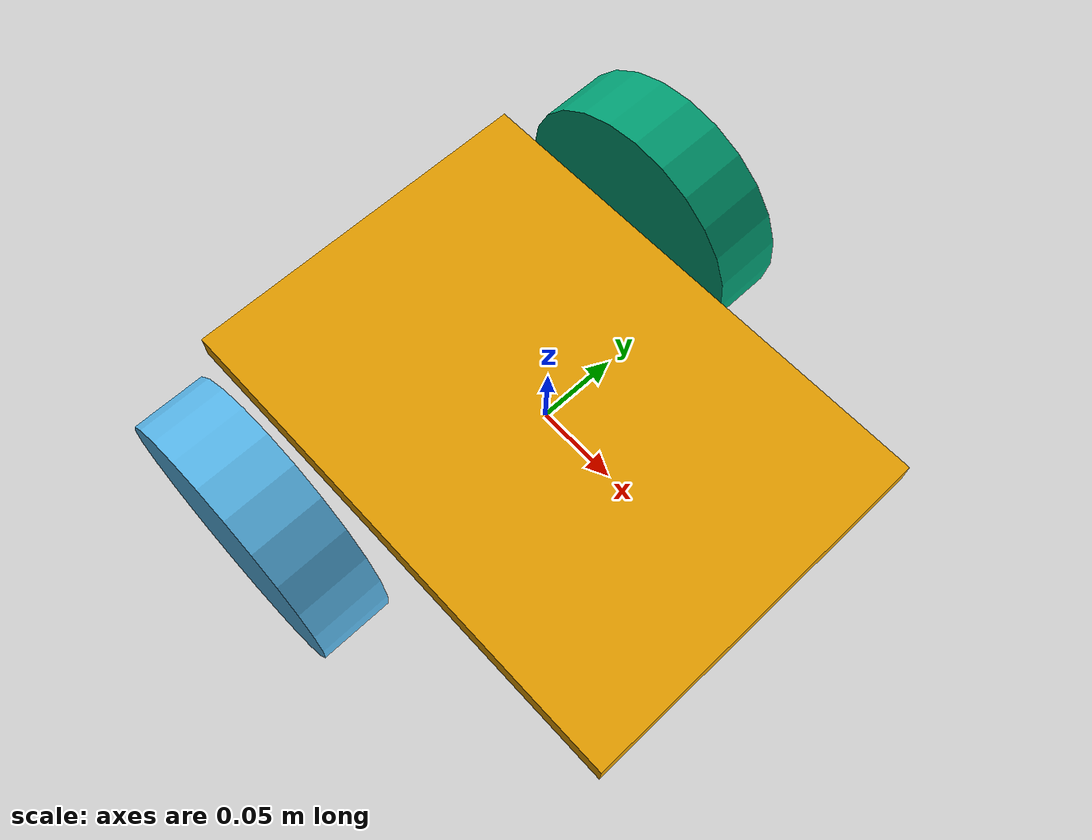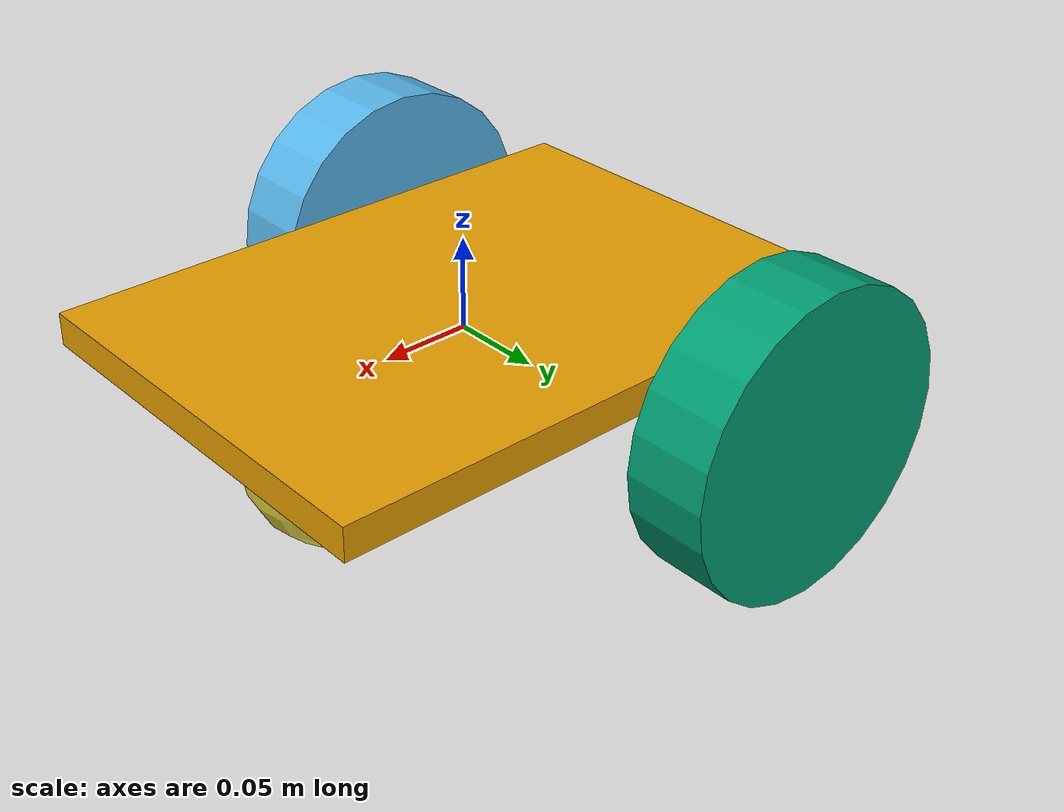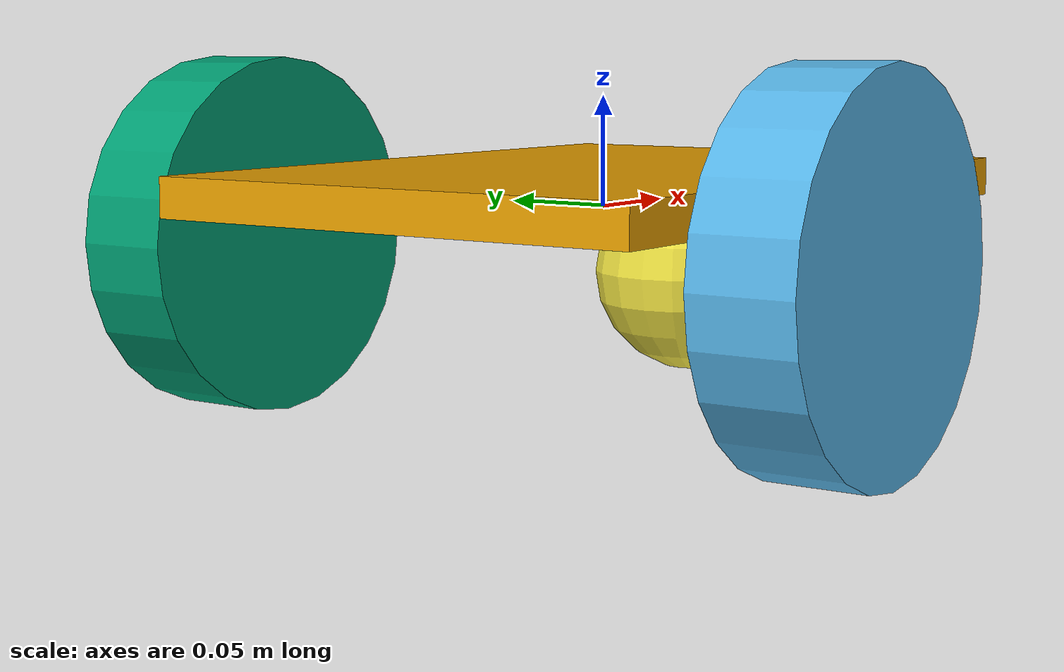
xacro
<?xml version="1.0"?>
<robot xmlns:xacro="http://www.ros.org/wiki/xacro">
    <xacro:property name="base_lenght" value="0.325"/>
    <xacro:property name="base_width" value="0.235"/>
    <xacro:property name="base_thickness" value="0.018"/>
    <xacro:property name="wheel_radius" value="0.0825"/>
    <xacro:property name="wheel_thickness" value="0.045"/>

    <xacro:property name="bottom_wheel_offset" value="0.015"/>
    <xacro:property name="space_wheel_base" value="0.01"/>
    <xacro:property name="caster_front_offset" value="0.08"/>
    <xacro:property name="wheel_back_offset" value="0.095"/>

    <link name="base_link">
        <visual>
            <geometry>
                <box size="${base_lenght} ${base_width} ${base_thickness}"/>
            </geometry>
            <origin xyz="0 0.0 ${base_thickness/2}" rpy="0.0 0.0 0.0" />
            <material name="body_color"/>
        </visual>
        <xacro:box_inertia m="5.0" l="${base_lenght}" w="${base_width}" h="${base_thickness}"
            xyz="0 0.0 ${base_thickness/2}" rpy="0 0 0"/>
        <collision>
            <geometry>
                <box size="${base_lenght} ${base_width} ${base_thickness}"/>
            </geometry>
            <origin xyz="0 0.0 ${base_thickness/2}" rpy="0.0 0.0 0.0" />
        </collision>
    </link>

    <link name="right_wheel_link">
        <visual>
            <geometry>
                <cylinder radius="${wheel_radius}" length="${wheel_thickness}"/>
            </geometry>
            <origin xyz="0.0 0.0 0.0" rpy="${pi/2.0} 0.0 0.0"/>
            <material name="wheel_color"/>
        </visual>
        <xacro:cylinder_inertia m="1.5" r="${wheel_radius}" w="${wheel_thickness}"
            xyz="0.0 0.0 0.0" rpy="${pi/2.0} 0.0 0.0"/>
        <collision>
            <geometry>
                <cylinder radius="${wheel_radius}" length="${wheel_thickness}"/>
            </geometry>
            <origin xyz="0.0 0.0 0.0" rpy="${pi/2.0} 0.0 0.0"/>
        </collision>
    </link>

    <link name="left_wheel_link">
        <visual>
            <geometry>
                <cylinder radius="${wheel_radius}" length="${wheel_thickness}"/>
            </geometry>
            <origin xyz="0.0 0.0 0.0" rpy="${pi / 2.0} 0.0 0.0"/>
            <material name="wheel_color"/>
        </visual>
        <xacro:cylinder_inertia m="1.5" r="${wheel_radius}" w="${wheel_thickness}"
            xyz="0.0 0.0 0.0" rpy="${pi/2.0} 0.0 0.0"/>
        <collision>
            <geometry>
                <cylinder radius="${wheel_radius}" length="${wheel_thickness}"/>
            </geometry>
            <origin xyz="0.0 0.0 0.0" rpy="${pi / 2.0} 0.0 0.0"/>
        </collision>
    </link>

    <link name="caster_wheel_link">
        <visual>
            <geometry>
                <sphere radius="${(bottom_wheel_offset + wheel_radius)/2}"/>
            </geometry>
            <origin xyz="0.0 0.0 0.0" rpy="0.0 0.0 0.0"/>
            <material name="wheel_color"/>
        </visual>
        <xacro:sphere_inertia m="0.5" r="${(bottom_wheel_offset + wheel_radius)/2}"
            xyz="0.0 0.0 0.0" rpy="0.0 0.0 0.0" />
        <collision>
            <geometry>
                <sphere radius="${(bottom_wheel_offset + wheel_radius)/2}"/>
            </geometry>
            <origin xyz="0.0 0.0 0.0" rpy="0.0 0.0 0.0"/>
        </collision>
    </link>

    <link name="base_foot_link">

    </link>

    <joint name="base_right_wheel" type="continuous">
        <origin xyz="-${base_lenght/2 - wheel_back_offset} -${base_width/2 + wheel_thickness/2 + bottom_wheel_offset} -${bottom_wheel_offset}" rpy="0 0.0 0.0"/>
        <parent link="base_link"/>
        <child link="right_wheel_link"/>
        <axis xyz="0 1 0"/>
    </joint>

    <joint name="base_left_wheel" type="continuous">
        <origin xyz="-${base_lenght/2 - wheel_back_offset} ${base_width/2 + wheel_thickness/2 + bottom_wheel_offset} -${bottom_wheel_offset}" rpy="0 0.0 0.0"/>
        <parent link="base_link"/>
        <child link="left_wheel_link"/>
        <axis xyz="0 1 0"/>
    </joint>

    <joint name="base_caster_wheel" type="fixed">
        <origin xyz="${base_lenght/2 - caster_front_offset} 0.0 -${(wheel_thickness/2 + bottom_wheel_offset)}" rpy="0.0 0.0 0.0"/>
        <parent link="base_link"/>
        <child link="caster_wheel_link"/>
        <axis xyz="0.0 0.0 0.0"/>
    </joint>

    <joint name="base_foo" type="fixed">
        <origin xyz="0.0 0.0 -${bottom_wheel_offset + wheel_radius}"/>
        <parent link="base_link"/>
        <child link="base_foot_link"/>
        <axis xyz="0.0 0.0 0"/>
    </joint>

</robot>
